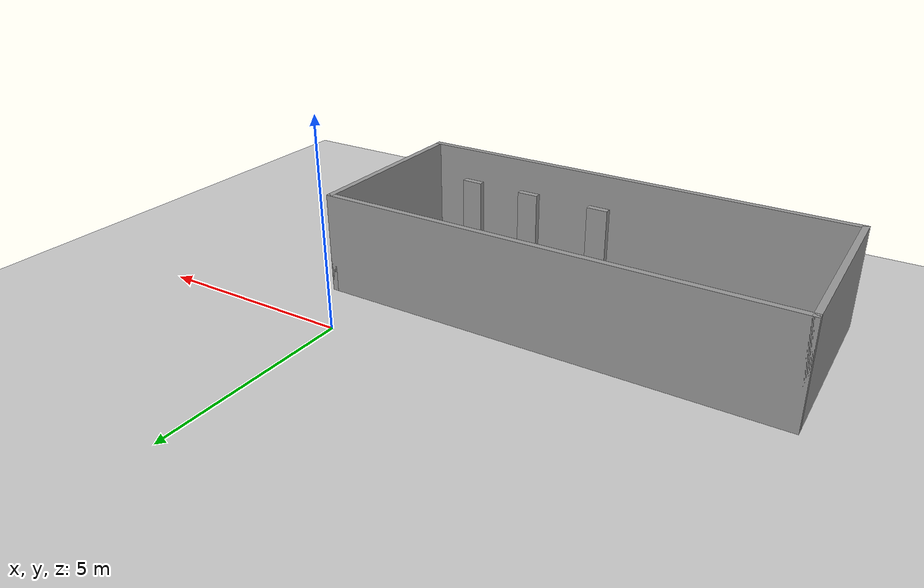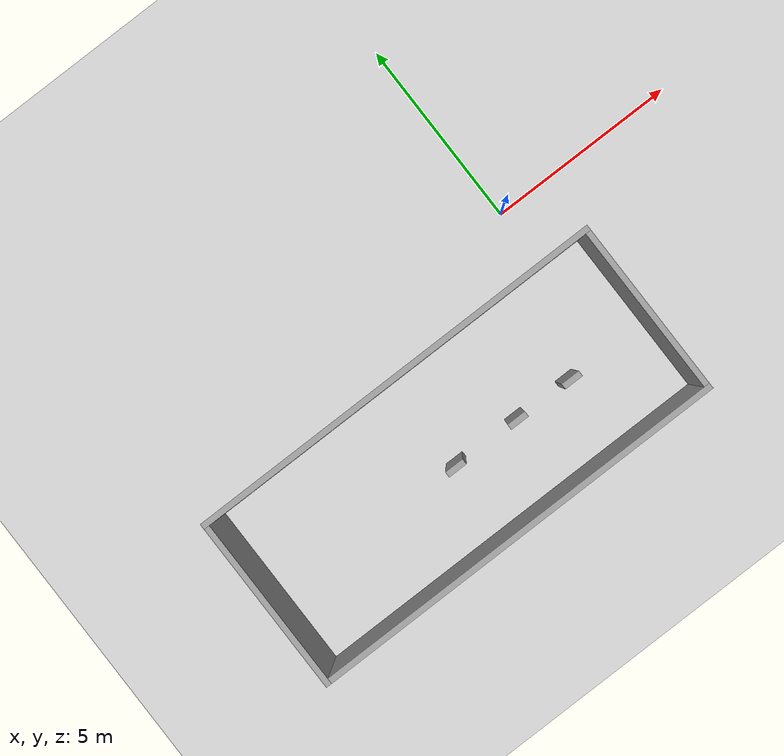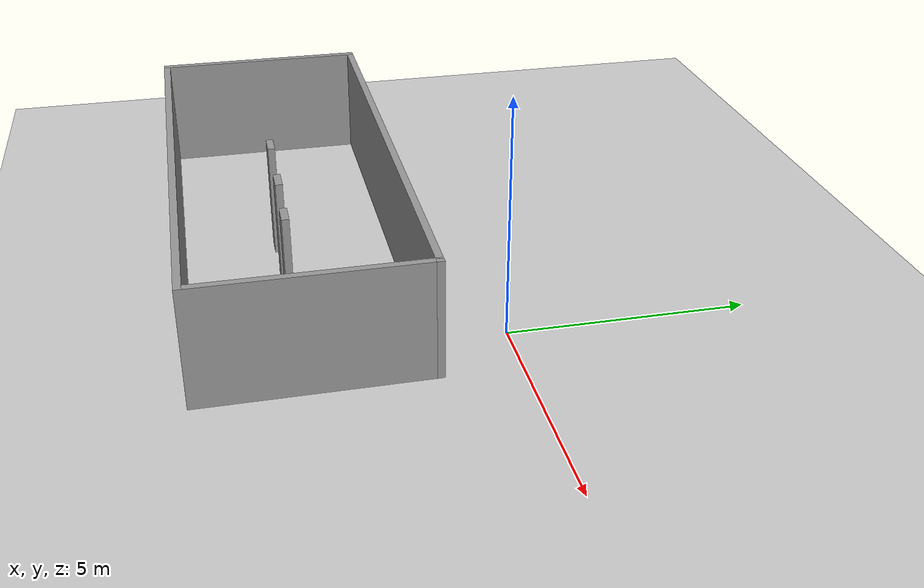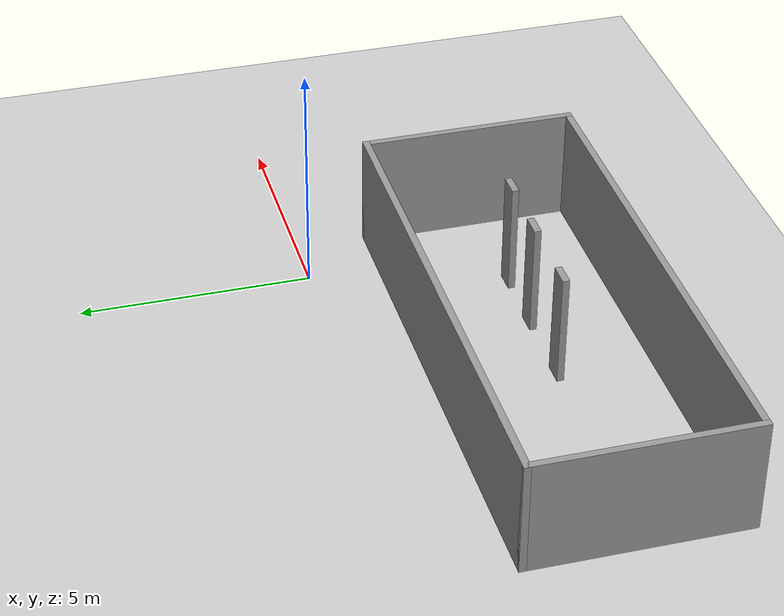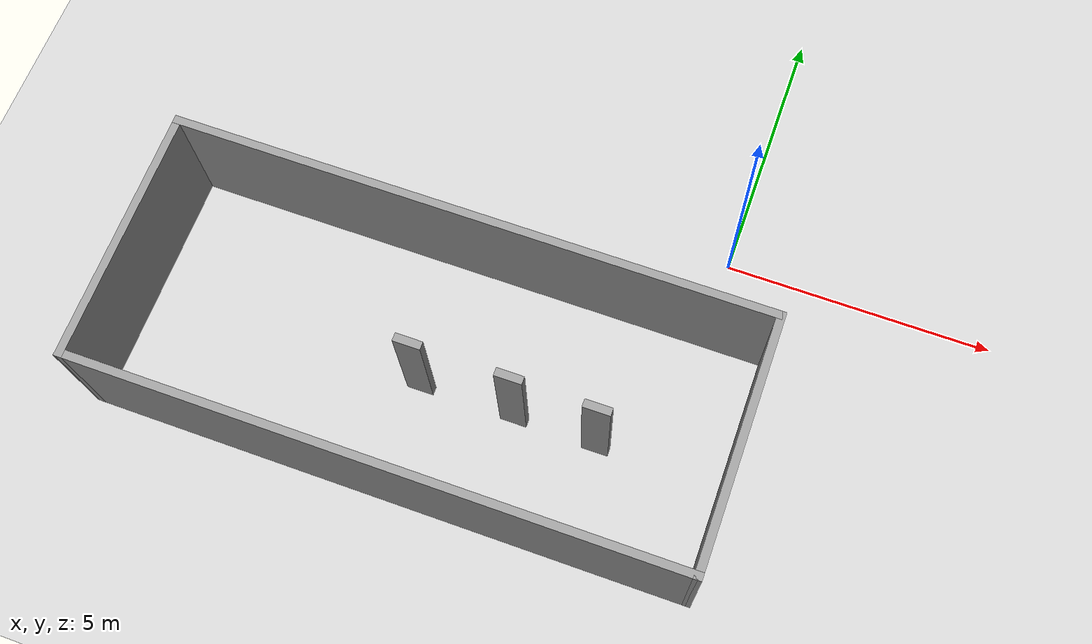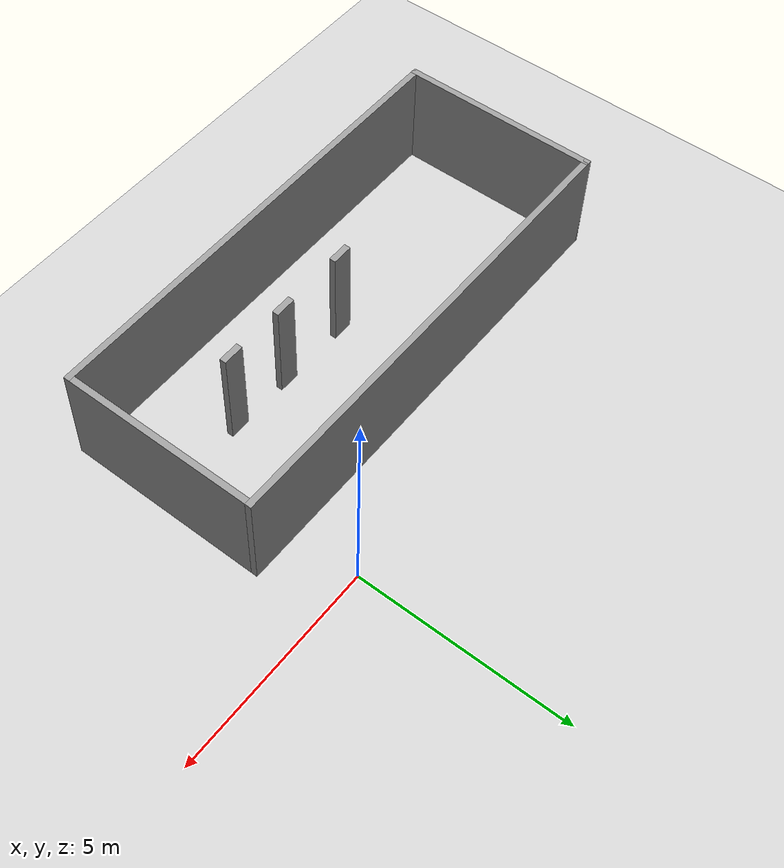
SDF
<sdf version="1.7">
 <world name="default">
  <light name="sun" type="directional">
   <pose>0 0 10 0 -0 0</pose>
   <diffuse>0.8 0.8 0.8 1</diffuse>
   <specular>0.2 0.2 0.2 1</specular>
   <attenuation>
    <range>1000</range>
    <constant>0.9</constant>
    <linear>0.01</linear>
    <quadratic>0.001</quadratic>
   </attenuation>
   <direction>-0.5 0.1 -0.9</direction>
   <spot><inner_angle>0</inner_angle><outer_angle>0</outer_angle><falloff>0</falloff></spot>
  </light>
  <model name="ground_plane">
   <static>1</static>
   <link name="link">
    <collision name="collision">
     <geometry><plane><normal>0 0 1</normal><size>100 100</size></plane></geometry>
     <surface>
      <contact><collide_bitmask>65535</collide_bitmask></contact>
      <friction><ode><mu>100</mu><mu2>50</mu2></ode></friction>
     </surface>
    </collision>
    <visual name="visual">
     <cast_shadows>0</cast_shadows>
     <geometry><plane><normal>0 0 1</normal><size>100 100</size></plane></geometry>
     <material>
      <script><uri>file://media/materials/scripts/gazebo.material</uri><name>Gazebo/Grey</name></script>
     </material>
    </visual>
   </link>
  </model>
  <gravity>0 0 -9.8</gravity>
  <magnetic_field>6e-06 2.3e-05 -4.2e-05</magnetic_field>
  <atmosphere type="adiabatic"/>
  <physics type="ode">
   <max_step_size>0.001</max_step_size>
   <real_time_factor>1</real_time_factor>
   <real_time_update_rate>1000</real_time_update_rate>
  </physics>
  <scene><ambient>0.4 0.4 0.4 1</ambient><background>0.7 0.7 0.7 1</background><shadows>1</shadows></scene>
  <spherical_coordinates>
   <surface_model>EARTH_WGS84</surface_model>
   <latitude_deg>0</latitude_deg>
   <longitude_deg>0</longitude_deg>
   <elevation>0</elevation>
   <heading_deg>0</heading_deg>
  </spherical_coordinates>
  <model name="pro">
   <pose>-2.41269 -2.10536 0 0 -0 0</pose>
   <link name="Wall_3">
    <collision name="Wall_3_Collision">
     <geometry><box><size>0.5 0.15 2.5</size></box></geometry>
     <pose>0 0 1.25 0 -0 0</pose>
    </collision>
    <visual name="Wall_3_Visual">
     <pose>0 0 1.25 0 -0 0</pose>
     <geometry><box><size>0.5 0.15 2.5</size></box></geometry>
     <material>
      <script><uri>file://media/materials/scripts/gazebo.material</uri><name>Gazebo/Grey</name></script>
      <ambient>1 1 1 1</ambient>
     </material>
     <meta><layer>0</layer></meta>
    </visual>
    <pose>-0.361818 -2.00627 0 0 -0 0</pose>
   </link>
   <link name="Wall_5">
    <collision name="Wall_5_Collision">
     <geometry><box><size>0.5 0.15 2.5</size></box></geometry>
     <pose>0 0 1.25 0 -0 0</pose>
    </collision>
    <visual name="Wall_5_Visual">
     <pose>0 0 1.25 0 -0 0</pose>
     <geometry><box><size>0.5 0.15 2.5</size></box></geometry>
     <material>
      <script><uri>file://media/materials/scripts/gazebo.material</uri><name>Gazebo/Grey</name></script>
      <ambient>1 1 1 1</ambient>
     </material>
     <meta><layer>0</layer></meta>
    </visual>
    <pose>1.19046 -2.03036 0 0 -0 0</pose>
   </link>
   <link name="Wall_7">
    <collision name="Wall_7_Collision">
     <geometry><box><size>0.5 0.15 2.5</size></box></geometry>
     <pose>0 0 1.25 0 -0 0</pose>
    </collision>
    <visual name="Wall_7_Visual">
     <pose>0 0 1.25 0 -0 0</pose>
     <geometry><box><size>0.5 0.15 2.5</size></box></geometry>
     <material>
      <script><uri>file://media/materials/scripts/gazebo.material</uri><name>Gazebo/Grey</name></script>
      <ambient>1 1 1 1</ambient>
     </material>
     <meta><layer>0</layer></meta>
    </visual>
    <pose>-2.16269 -1.99632 0 0 -0 0</pose>
   </link>
   <static>1</static>
  </model>
  <model name="Untitled">
   <pose>-4.3936 -3.1357 0 0 -0 0</pose>
   <link name="Wall_0">
    <collision name="Wall_0_Collision">
     <geometry><box><size>11.25 0.15 2.5</size></box></geometry>
     <pose>0 0 1.25 0 -0 0</pose>
    </collision>
    <visual name="Wall_0_Visual">
     <pose>0 0 1.25 0 -0 0</pose>
     <geometry><box><size>11.25 0.15 2.5</size></box></geometry>
     <material>
      <script><uri>file://media/materials/scripts/gazebo.material</uri><name>Gazebo/Grey</name></script>
      <ambient>1 1 1 1</ambient>
     </material>
     <meta><layer>0</layer></meta>
    </visual>
    <pose>0 1.5393 0 0 -0 0</pose>
   </link>
   <link name="Wall_3">
    <collision name="Wall_3_Collision">
     <geometry><box><size>4.75 0.15 2.5</size></box></geometry>
     <pose>0 0 1.25 0 -0 0</pose>
    </collision>
    <visual name="Wall_3_Visual">
     <pose>0 0 1.25 0 -0 0</pose>
     <geometry><box><size>4.75 0.15 2.5</size></box></geometry>
     <material>
      <script><uri>file://media/materials/scripts/gazebo.material</uri><name>Gazebo/Grey</name></script>
      <ambient>1 1 1 1</ambient>
     </material>
     <meta><layer>0</layer></meta>
    </visual>
    <pose>-5.55 -0.7607 0 0 -0 -1.5708</pose>
   </link>
   <link name="Wall_4">
    <collision name="Wall_4_Collision">
     <geometry><box><size>11.25 0.15 2.5</size></box></geometry>
     <pose>0 0 1.25 0 -0 0</pose>
    </collision>
    <visual name="Wall_4_Visual">
     <pose>0 0 1.25 0 -0 0</pose>
     <geometry><box><size>11.25 0.15 2.5</size></box></geometry>
     <material>
      <script><uri>file://media/materials/scripts/gazebo.material</uri><name>Gazebo/Grey</name></script>
      <ambient>1 1 1 1</ambient>
     </material>
     <meta><layer>0</layer></meta>
    </visual>
    <pose>0 -3.0607 0 0 -0 0</pose>
   </link>
   <link name="Wall_5">
    <collision name="Wall_5_Collision">
     <geometry><box><size>4.75 0.15 2.5</size></box></geometry>
     <pose>0 0 1.25 0 -0 0</pose>
    </collision>
    <visual name="Wall_5_Visual">
     <pose>0 0 1.25 0 -0 0</pose>
     <geometry><box><size>4.75 0.15 2.5</size></box></geometry>
     <material>
      <script><uri>file://media/materials/scripts/gazebo.material</uri><name>Gazebo/Grey</name></script>
      <ambient>1 1 1 1</ambient>
     </material>
     <meta><layer>0</layer></meta>
    </visual>
    <pose>5.55 -0.7607 0 0 -0 1.5708</pose>
   </link>
   <static>1</static>
  </model>
 </world>
</sdf>
